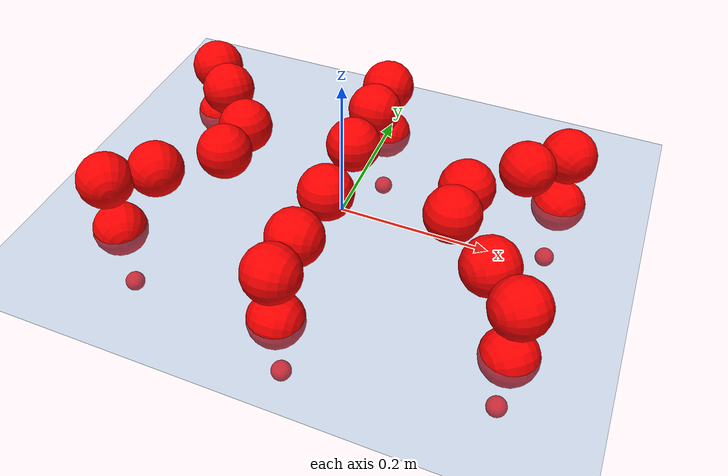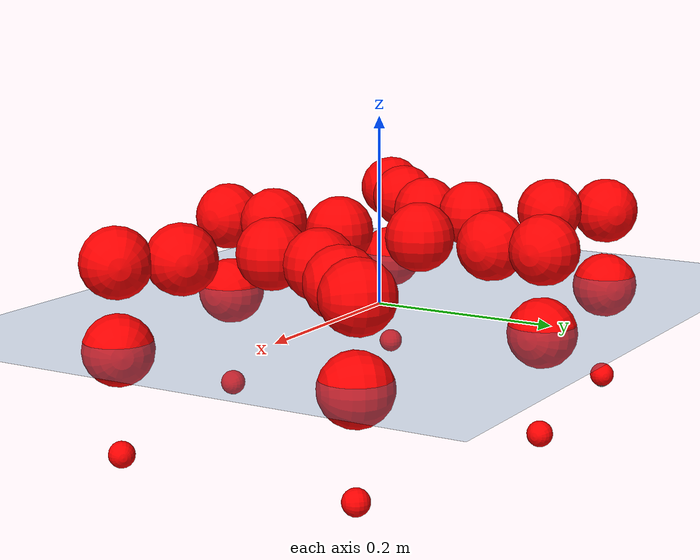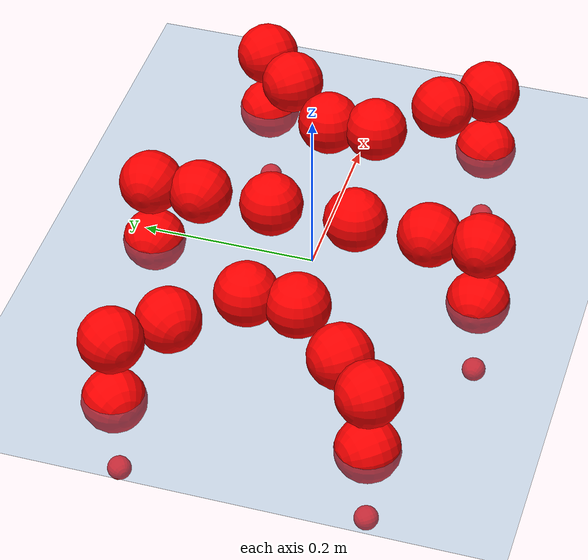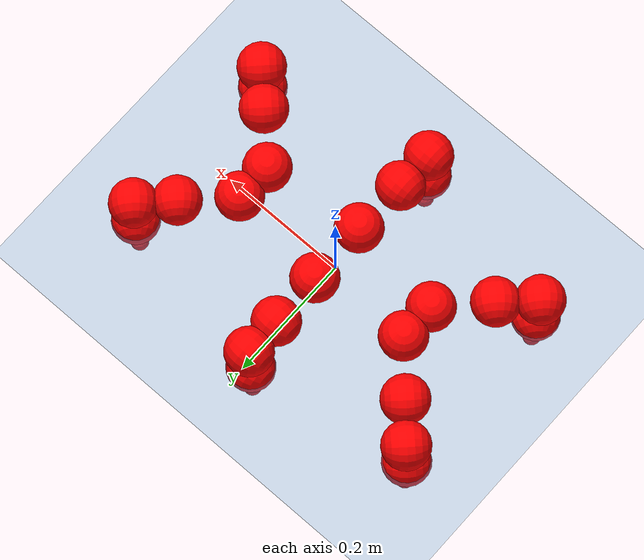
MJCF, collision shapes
<mujoco model="Golem">
  <compiler angle="radian" assetdir="assets" balanceinertia="true" inertiafromgeom="false"/>

  <option timestep="0.005" density="1.2" viscosity="2e-05"/>

  <size nkey="1"/>

  <visual>
    <quality shadowsize="8192"/>
    <map shadowclip="0.5"/>
  </visual>

  <default>
    <default class="/">
      <joint armature="0.01" damping="0.01" frictionloss="0.01"/>
      <geom contype="0" conaffinity="0" group="1" solref="-1000 -80"/>
      <site size="0.01 0.005 0.005" group="5"/>
      <general forcelimited="true" biastype="affine" gainprm="25" biasprm="0 -25 -0.5"/>
      <default class="visual">
        <geom type="mesh" group="2"/>
      </default>
      <default class="collision">
        <geom group="3"/>
      </default>
      <default class="foot">
        <geom size="0.01 0 0" condim="6" group="4" priority="1" solimp="0.015 1 0.01"/>
      </default>
      <default class="reward_collision_sphere">
        <geom group="5" rgba="1 0 0 1"/>
      </default>
    </default>
  </default>

  <asset>
    <texture type="skybox" colorspace="auto" name="//unnamed_texture_0" builtin="gradient" rgb1="0.95 0.95 0.95" rgb2="0.95 0.95 0.95" width="100" height="600"/>
    <texture type="2d" colorspace="auto" name="texplane" builtin="checker" rgb1="0.345 0.575 0.748" rgb2="0.345 0.575 0.748" markrgb="1 1 1" width="512" height="512"/>
    <material name="MatPlane" class="/" texture="texplane" texuniform="true" texrepeat="2 2" specular="0.9"/>
    <mesh name="body" class="/" file="body.stl" scale="0.001 0.001 0.001"/>
    <mesh name="coxa" class="/" file="coxa.stl" scale="0.001 0.001 0.001"/>
    <mesh name="femur" class="/" file="femur.stl" scale="0.001 0.001 0.001"/>
    <mesh name="tibia" class="/" file="tibia.stl" scale="0.001 0.001 0.001"/>
    <mesh name="tarsus" class="/" file="tarsus.stl" scale="0.001 0.001 0.001"/>
  </asset>

  <worldbody>
    <geom name="floor" class="/" size="100 100 0.125" type="plane" group="0" material="MatPlane"/>
    <light name="toplight_shadow" class="/" pos="0 0 5" dir="0.0990148 0.0990148 -0.990148" type="directional" ambient="0.04 0.04 0.04" diffuse="0.55 0.55 0.55" specular="0.12 0.12 0.12"/>
    <light name="toplight_fill" class="/" pos="0 0 5" dir="0.0990148 0.0990148 -0.990148" type="directional" castshadow="false" ambient="0.04 0.04 0.04" diffuse="0.3 0.3 0.3" specular="0.08 0.08 0.08"/>
    <body name="trunk" pos="0.000617541 -0.000780848 0.00105884" quat="1 -0.000104911 -0.000435439 -0.00028299">
      <inertial pos="0.00224955 -0.00149108 -0.000852039" quat="0.999998 -9.72552e-05 0.000296199 0.00185671" mass="2.93293" diaginertia="0.0103154 0.000715445 0.0217034"/>
      <joint name="//unnamed_joint_0" type="free"/>
      <geom name="//unnamed_geom_1" class="/" pos="0 0 0.0739916" quat="1 0 0 0" type="mesh" rgba="0.9 0.9 0.9 1" mesh="body"/>
      <site name="imu" class="/" pos="0.130657 -0.00267894 0.102791" size="0.0091211"/>
      <camera name="track" class="/" pos="0 -1.17361 0" quat="0.707107 0.707107 0 0" mode="trackcom"/>
      <camera name="ego_camera" class="/" pos="0.129143 0 0.115612" quat="-0.5 -0.5 0.5 0.5"/>
      <body name="coxa_RR" pos="-0.175785 -0.0498331 0.0751162" quat="0.382863 -3.43225e-06 -0.000127588 -0.923805">
        <inertial pos="9.00769e-05 -0.000429449 0.000849258" quat="0.999999 -0.000919245 -0.000959662 0.000474199" mass="0.15074" diaginertia="0.00963091 0.00068925 0.0204039"/>
        <joint name="coxa_joint_RR" class="/" pos="0 0 0" axis="0.00941111 0.00232363 -0.999953" range="-3.16192 3.14238" armature="0.00886845" damping="0" frictionloss="0.00907183"/>
        <geom name="//unnamed_geom_2" class="/" type="mesh" rgba="0.2 0.2 0.2 1" mesh="coxa"/>
        <geom name="//unnamed_geom_3" class="reward_collision_sphere" size="0.0364844" pos="-0.0298022 0 0"/>
        <body name="femur_RR" pos="0.0615573 0.00119122 0.0012089" quat="0.499825 -0.500196 0.500006 0.499973">
          <inertial pos="-0.00110537 -0.000412099 -0.000613932" quat="0.999998 -0.000725043 0.000619222 -0.00173145" mass="0.148982" diaginertia="0.009697 0.000677394 0.0201292"/>
          <joint name="femur_joint_RR" class="/" pos="0 0 0" axis="-0.0129082 -0.00357521 -0.99991" range="-3.13799 3.12106" armature="0.00910557" damping="0.000586073" frictionloss="0.0090133"/>
          <geom name="//unnamed_geom_4" class="/" type="mesh" rgba="0.9 0.9 0.9 1" mesh="femur"/>
          <geom name="//unnamed_geom_5" class="reward_collision_sphere" size="0.0364844"/>
          <body name="tibia_RR" pos="-0.00114961 -0.0637563 -0.00164241" quat="5.38967e-05 1 -7.00295e-05 -9.20489e-05">
            <inertial pos="-0.000420821 -0.00245876 0.000304365" quat="0.999913 -0.00524239 0.011779 0.00260978" mass="0.151861" diaginertia="0.00989196 0.000693582 0.0202693"/>
            <joint name="tibia_joint_RR" class="/" pos="0 0 0" axis="-0.00038305 0.00811426 0.999967" range="-3.11454 3.15994" armature="0.00908247" damping="0.00655256" frictionloss="0.00941605"/>
            <geom name="//unnamed_geom_6" class="/" type="mesh" rgba="0.2 0.2 0.2 1" mesh="tibia"/>
            <geom name="//unnamed_geom_7" class="reward_collision_sphere" size="0.0364844"/>
            <body name="tarsus_RR" pos="0.0858835 -0.0026679 -0.00142576" quat="1 -0.000184854 -5.90508e-05 0.000155946">
              <inertial pos="0.0596936 0.000714069 -0.00137005" quat="0.504546 0.497419 0.506748 0.491136" mass="0.156812" diaginertia="0.00986632 0.000706855 0.0202435"/>
              <joint name="tarsus_joint_RR" class="/" pos="0 0 0" axis="-0.00142568 -0.000285586 0.999999" range="-3.16393 3.15233" armature="0.00956966" damping="0.000258328" frictionloss="0.010008"/>
              <geom name="//unnamed_geom_8" class="/" type="mesh" rgba="0.9 0.9 0.9 1" mesh="tarsus"/>
              <geom name="foot_1" class="foot" size="0.00914637" pos="0.111262 0 0" quat="0 -0.707107 0 0.707107"/>
              <geom name="//unnamed_geom_10" class="reward_collision_sphere" size="0.0364844"/>
              <geom name="//unnamed_geom_11" class="reward_collision_sphere" size="0.0136816" pos="0.106791 0 0"/>
              <site name="foot_1" class="foot" pos="0.111262 0 0" quat="0 -0.707107 0 0.707107" size="0.0091211"/>
            </body>
          </body>
        </body>
      </body>
      <body name="coxa_RM" pos="-0.00119793 -0.0793927 0.0737877" quat="0.707596 0.000471613 -0.000785498 -0.706616">
        <inertial pos="0.00173085 0.000232848 -0.00181032" quat="1 -0.000236357 -0.000152111 9.37714e-06" mass="0.153395" diaginertia="0.00969502 0.000712476 0.02049"/>
        <joint name="coxa_joint_RM" class="/" pos="0 0 0" axis="0.00297887 -0.000689165 -0.999995" range="-3.13115 3.14384" armature="0.00989381" damping="0.0188492" frictionloss="0.00879717"/>
        <geom name="//unnamed_geom_12" class="/" type="mesh" rgba="0.2 0.2 0.2 1" mesh="coxa"/>
        <geom name="//unnamed_geom_13" class="reward_collision_sphere" size="0.0364844" pos="-0.0298022 0 0"/>
        <body name="femur_RM" pos="0.0563022 -0.00291378 0.0013566" quat="0.4999 -0.499576 0.500246 0.500278">
          <inertial pos="0.00255632 -0.00113261 -0.000193235" quat="0.999991 0.00188821 0.00342632 -0.00150188" mass="0.146861" diaginertia="0.00908291 0.000673045 0.0193527"/>
          <joint name="femur_joint_RM" class="/" pos="0 0 0" axis="0.00694546 -0.00122097 -0.999975" range="-3.13496 3.08834" armature="0.0086661" damping="0.0167052" frictionloss="0.008934"/>
          <geom name="//unnamed_geom_14" class="/" type="mesh" rgba="0.9 0.9 0.9 1" mesh="femur"/>
          <geom name="//unnamed_geom_15" class="reward_collision_sphere" size="0.0364844"/>
          <body name="tibia_RM" pos="-0.000244855 -0.060845 -0.000878348" quat="0.000174615 1 0.000376182 3.56231e-05">
            <inertial pos="-0.0009383 0.00285136 0.000372175" quat="0.999992 -0.00247432 0.00169982 -0.00251747" mass="0.148875" diaginertia="0.009605 0.000687512 0.0203518"/>
            <joint name="tibia_joint_RM" class="/" pos="0 0 0" axis="-0.00168595 -0.0015797 0.999997" range="-3.12877 3.15944" armature="0.00957081" damping="0.0214457" frictionloss="0.00922034"/>
            <geom name="//unnamed_geom_16" class="/" type="mesh" rgba="0.2 0.2 0.2 1" mesh="tibia"/>
            <geom name="//unnamed_geom_17" class="reward_collision_sphere" size="0.0364844"/>
            <body name="tarsus_RM" pos="0.084651 -0.00156406 0.000304814" quat="1 -3.22558e-05 1.71857e-05 -4.80124e-05">
              <inertial pos="0.0619081 -0.000153698 -0.000759076" quat="0.501691 0.500602 0.499677 0.498024" mass="0.156699" diaginertia="0.00966349 0.000695173 0.0213425"/>
              <joint name="tarsus_joint_RM" class="/" pos="0 0 0" axis="-0.00216487 0.00587856 0.99998" range="-3.17636 3.09574" armature="0.0092578" damping="0.00688151" frictionloss="0.00827803"/>
              <geom name="//unnamed_geom_18" class="/" type="mesh" rgba="0.9 0.9 0.9 1" mesh="tarsus"/>
              <geom name="foot_2" class="foot" size="0.00958906" pos="0.111262 0 0" quat="0 -0.707107 0 0.707107"/>
              <geom name="//unnamed_geom_20" class="reward_collision_sphere" size="0.0364844"/>
              <geom name="//unnamed_geom_21" class="reward_collision_sphere" size="0.0136816" pos="0.106791 0 0"/>
              <site name="foot_2" class="foot" pos="0.111262 0 0" quat="0 -0.707107 0 0.707107" size="0.0091211"/>
            </body>
          </body>
        </body>
      </body>
      <body name="coxa_RF" pos="0.177228 -0.0512193 0.0768232" quat="0.923852 0.000105157 -0.000172142 -0.382749">
        <inertial pos="0.00120843 -0.0025996 0.0020424" quat="0.99992 0.0074825 0.000374912 0.0101739" mass="0.145112" diaginertia="0.00956672 0.00068188 0.0202911"/>
        <joint name="coxa_joint_RF" class="/" pos="0 0 0" axis="7.4376e-05 -0.00690444 -0.999976" range="-3.08687 3.1433" armature="0.00813528" damping="0" frictionloss="0.00894646"/>
        <geom name="//unnamed_geom_22" class="/" type="mesh" rgba="0.2 0.2 0.2 1" mesh="coxa"/>
        <geom name="//unnamed_geom_23" class="reward_collision_sphere" size="0.0364844" pos="-0.0298022 0 0"/>
        <body name="femur_RF" pos="0.0599727 -0.00031908 -0.000997314" quat="0.500042 -0.499938 0.50006 0.49996">
          <inertial pos="-0.00157252 0.0024037 0.000545684" quat="0.999987 0.00237079 0.00407104 -0.00197655" mass="0.151855" diaginertia="0.0100006 0.000717865 0.0215893"/>
          <joint name="femur_joint_RF" class="/" pos="0 0 0" axis="-0.000182367 -0.000268998 -1" range="-3.14591 3.13706" armature="0.00917276" damping="0.00689253" frictionloss="0.00910721"/>
          <geom name="//unnamed_geom_24" class="/" type="mesh" rgba="0.9 0.9 0.9 1" mesh="femur"/>
          <geom name="//unnamed_geom_25" class="reward_collision_sphere" size="0.0364844"/>
          <body name="tibia_RF" pos="0.000387822 -0.064029 -0.000495616" quat="4.01491e-05 1 -3.21481e-05 0.00020813">
            <inertial pos="5.75789e-05 -0.00027338 -0.00268214" quat="0.999933 0.00127403 0.00601777 -0.00983511" mass="0.154007" diaginertia="0.00992461 0.000682454 0.0214275"/>
            <joint name="tibia_joint_RF" class="/" pos="0 0 0" axis="-0.00405954 -0.00328821 0.999986" range="-3.14765 3.14652" armature="0.00913889" damping="0.00979778" frictionloss="0.00937357"/>
            <geom name="//unnamed_geom_26" class="/" type="mesh" rgba="0.2 0.2 0.2 1" mesh="tibia"/>
            <geom name="//unnamed_geom_27" class="reward_collision_sphere" size="0.0364844"/>
            <body name="tarsus_RF" pos="0.0873206 0.000188626 -0.000122317" quat="1 -3.98481e-05 0.000867865 -0.000200259">
              <inertial pos="0.0597366 -0.000760309 -0.000996917" quat="0.499337 0.498894 0.501836 0.499928" mass="0.153965" diaginertia="0.00989575 0.000681268 0.0201769"/>
              <joint name="tarsus_joint_RF" class="/" pos="0 0 0" axis="-0.00316736 0.000786769 0.999995" stiffness="0.0237376" range="-3.10186 3.14153" armature="0.00856175" damping="0" frictionloss="0.00874921"/>
              <geom name="//unnamed_geom_28" class="/" type="mesh" rgba="0.9 0.9 0.9 1" mesh="tarsus"/>
              <geom name="foot_3" class="foot" size="0.009417" pos="0.111262 0 0" quat="0 -0.707107 0 0.707107"/>
              <geom name="//unnamed_geom_30" class="reward_collision_sphere" size="0.0364844"/>
              <geom name="//unnamed_geom_31" class="reward_collision_sphere" size="0.0136816" pos="0.106791 0 0"/>
              <site name="foot_3" class="foot" pos="0.111262 0 0" quat="0 -0.707107 0 0.707107" size="0.0091211"/>
            </body>
          </body>
        </body>
      </body>
      <body name="coxa_LR" pos="-0.17467 0.0503998 0.0755305" quat="0.382401 -0.000146253 -2.93781e-06 0.923997">
        <inertial pos="-0.00135638 -0.0023135 -0.00066544" quat="0.99996 -0.00793355 -0.00274551 0.00314254" mass="0.147386" diaginertia="0.00979186 0.000667913 0.0195699"/>
        <joint name="coxa_joint_LR" class="/" pos="0 0 0" axis="-0.00157877 -0.000970094 -0.999998" range="-3.14995 3.13653" armature="0.00891948" damping="0.0193201" frictionloss="0.00936298"/>
        <geom name="//unnamed_geom_32" class="/" type="mesh" rgba="0.2 0.2 0.2 1" mesh="coxa"/>
        <geom name="//unnamed_geom_33" class="reward_collision_sphere" size="0.0364844" pos="-0.0298022 0 0"/>
        <body name="femur_LR" pos="0.0620582 -0.00368072 0.000121034" quat="0.499494 -0.500165 0.499953 0.500387">
          <inertial pos="-0.000181628 -0.00272503 -0.000686436" quat="1 5.22372e-05 4.67132e-05 0.000129988" mass="0.151193" diaginertia="0.00934452 0.000706799 0.0199431"/>
          <joint name="femur_joint_LR" class="/" pos="0 0 0" axis="0.000117002 -0.00017962 1" range="-3.0915 3.13927" armature="0.00916167" damping="0" frictionloss="0.00909495"/>
          <geom name="//unnamed_geom_34" class="/" type="mesh" rgba="0.9 0.9 0.9 1" mesh="femur"/>
          <geom name="//unnamed_geom_35" class="reward_collision_sphere" size="0.0364844"/>
          <body name="tibia_LR" pos="0.0019668 -0.0662643 -0.00348419" quat="-0.000170359 1 4.85945e-05 -0.00019414">
            <inertial pos="0.000441274 -0.00193606 0.000175096" quat="0.999932 -0.00679269 0.00613502 -0.0071615" mass="0.14921" diaginertia="0.0093079 0.000680302 0.0204017"/>
            <joint name="tibia_joint_LR" class="/" pos="0 0 0" axis="0.000709789 0.000985674 -0.999999" range="-3.13035 3.18897" armature="0.00866374" damping="0" frictionloss="0.00911218"/>
            <geom name="//unnamed_geom_36" class="/" type="mesh" rgba="0.2 0.2 0.2 1" mesh="tibia"/>
            <geom name="//unnamed_geom_37" class="reward_collision_sphere" size="0.0364844"/>
            <body name="tarsus_LR" pos="0.0870988 0.00216761 -0.00206894" quat="1 -0.000436554 6.72228e-05 0.000603807">
              <inertial pos="0.0624347 -0.0022882 -0.00225207" quat="0.498169 0.501388 0.499901 0.500537" mass="0.152159" diaginertia="0.00958628 0.000690548 0.0199544"/>
              <joint name="tarsus_joint_LR" class="/" pos="0 0 0" axis="0.00878802 -0.012302 -0.999886" range="-3.13222 3.12286" armature="0.00841573" damping="0" frictionloss="0.00876781"/>
              <geom name="//unnamed_geom_38" class="/" type="mesh" rgba="0.9 0.9 0.9 1" mesh="tarsus"/>
              <geom name="foot_4" class="foot" size="0.0100718" pos="0.111262 0 0" quat="0.707107 0 -0.707107 0"/>
              <geom name="//unnamed_geom_40" class="reward_collision_sphere" size="0.0364844"/>
              <geom name="//unnamed_geom_41" class="reward_collision_sphere" size="0.0136816" pos="0.106791 0 0"/>
              <site name="foot_4" class="foot" pos="0.111262 0 0" quat="0.707107 0 -0.707107 0" size="0.0091211"/>
            </body>
          </body>
        </body>
      </body>
      <body name="coxa_LM" pos="-0.00340275 0.0775485 0.0753747" quat="0.707085 0.000187 0.000541134 0.707129">
        <inertial pos="0.00123623 -0.0016024 -0.00036587" quat="0.999931 -0.00917959 -0.00120107 0.00724994" mass="0.152759" diaginertia="0.00987465 0.00071861 0.0213331"/>
        <joint name="coxa_joint_LM" class="/" pos="0 0 0" axis="0.0103075 -0.00830534 -0.999912" range="-3.12881 3.11758" armature="0.00868231" damping="0.00778718" frictionloss="0.0095194"/>
        <geom name="//unnamed_geom_42" class="/" type="mesh" rgba="0.2 0.2 0.2 1" mesh="coxa"/>
        <geom name="//unnamed_geom_43" class="reward_collision_sphere" size="0.0364844" pos="-0.0298022 0 0"/>
        <body name="femur_LM" pos="0.0537821 0.00134616 -0.00104598" quat="0.499977 -0.499939 0.500218 0.499866">
          <inertial pos="0.00138697 0.000455655 0.00105806" quat="0.999961 -0.00301505 -0.0076481 0.00337386" mass="0.154585" diaginertia="0.00958825 0.000735009 0.0213839"/>
          <joint name="femur_joint_LM" class="/" pos="0 0 0" axis="-0.00285328 0.000459827 0.999996" range="-3.16024 3.1446" armature="0.00951767" damping="0.00375317" frictionloss="0.00848705"/>
          <geom name="//unnamed_geom_44" class="/" type="mesh" rgba="0.9 0.9 0.9 1" mesh="femur"/>
          <geom name="//unnamed_geom_45" class="reward_collision_sphere" size="0.0364844"/>
          <body name="tibia_LM" pos="-0.00119774 -0.0586235 0.00108285" quat="0.000169309 1 0.000547087 -0.000786752">
            <inertial pos="0.00085454 0.000137203 -0.00229126" quat="0.999925 -0.00805554 -0.00754046 -0.00532982" mass="0.151796" diaginertia="0.00967375 0.000723676 0.0210697"/>
            <joint name="tibia_joint_LM" class="/" pos="0 0 0" axis="0.00397333 -0.00187185 -0.99999" range="-3.13436 3.13785" armature="0.00927483" damping="0" frictionloss="0.00819405"/>
            <geom name="//unnamed_geom_46" class="/" type="mesh" rgba="0.2 0.2 0.2 1" mesh="tibia"/>
            <geom name="//unnamed_geom_47" class="reward_collision_sphere" size="0.0364844"/>
            <body name="tarsus_LM" pos="0.0859802 -0.000378853 -0.000180671" quat="1 -0.000500794 6.9477e-05 -0.000852906">
              <inertial pos="0.060566 -0.00128862 0.000470369" quat="0.499238 0.503648 0.490274 0.506686" mass="0.156125" diaginertia="0.00998646 0.000700652 0.0206269"/>
              <joint name="tarsus_joint_LM" class="/" pos="0 0 0" axis="0.00412355 0.0104111 -0.999937" stiffness="0.00351273" range="-3.1358 3.13174" armature="0.00895941" damping="0" frictionloss="0.0102319"/>
              <geom name="//unnamed_geom_48" class="/" type="mesh" rgba="0.9 0.9 0.9 1" mesh="tarsus"/>
              <geom name="foot_5" class="foot" size="0.00906114" pos="0.111262 0 0" quat="0.707107 0 -0.707107 0"/>
              <geom name="//unnamed_geom_50" class="reward_collision_sphere" size="0.0364844"/>
              <geom name="//unnamed_geom_51" class="reward_collision_sphere" size="0.0136816" pos="0.106791 0 0"/>
              <site name="foot_5" class="foot" pos="0.111262 0 0" quat="0.707107 0 -0.707107 0" size="0.0091211"/>
            </body>
          </body>
        </body>
      </body>
      <body name="coxa_LF" pos="0.179099 0.0479956 0.0722807" quat="0.923775 -0.000262273 8.47871e-05 0.382935">
        <inertial pos="-0.000558225 0.000415273 0.00240056" quat="0.999963 -0.0070591 0.00485368 7.83086e-05" mass="0.148826" diaginertia="0.00931083 0.000712584 0.0202075"/>
        <joint name="coxa_joint_LF" class="/" pos="0 0 0" axis="-0.0115291 0.00916406 -0.999892" range="-3.12612 3.13765" armature="0.00814903" damping="0" frictionloss="0.010318"/>
        <geom name="//unnamed_geom_52" class="/" type="mesh" rgba="0.2 0.2 0.2 1" mesh="coxa"/>
        <geom name="//unnamed_geom_53" class="reward_collision_sphere" size="0.0364844" pos="-0.0298022 0 0"/>
        <body name="femur_LF" pos="0.0591286 0.00055765 0.000347447" quat="0.499926 -0.500088 0.500105 0.49988">
          <inertial pos="-0.00270046 -6.5683e-05 0.00259327" quat="0.999998 -0.0014206 0.00115828 0.000177222" mass="0.152871" diaginertia="0.0100466 0.000699115 0.0207117"/>
          <joint name="femur_joint_LF" class="/" pos="0 0 0" axis="-0.00201187 -0.00285965 0.999994" range="-3.12844 3.12853" armature="0.00955279" damping="0" frictionloss="0.0086429"/>
          <geom name="//unnamed_geom_54" class="/" type="mesh" rgba="0.9 0.9 0.9 1" mesh="femur"/>
          <geom name="//unnamed_geom_55" class="reward_collision_sphere" size="0.0364844"/>
          <body name="tibia_LF" pos="-0.000486203 -0.0626895 0.000299971" quat="0.000104762 1 -0.000179005 -0.000284751">
            <inertial pos="0.000335026 -0.00239632 0.000270813" quat="1 -0.00017211 -0.000285942 0.000472479" mass="0.145769" diaginertia="0.00905088 0.000674671 0.0197625"/>
            <joint name="tibia_joint_LF" class="/" pos="0 0 0" axis="-0.00459985 0.0002227 -0.999989" range="-3.1414 3.13529" armature="0.00983287" damping="0" frictionloss="0.00926975"/>
            <geom name="//unnamed_geom_56" class="/" type="mesh" rgba="0.2 0.2 0.2 1" mesh="tibia"/>
            <geom name="//unnamed_geom_57" class="reward_collision_sphere" size="0.0364844"/>
            <body name="tarsus_LF" pos="0.0854502 0.000781483 0.00197327" quat="1 0.000154455 -0.000158996 0.00019793">
              <inertial pos="0.0593665 0.00119232 0.000535627" quat="0.497868 0.503579 0.496927 0.501598" mass="0.143375" diaginertia="0.00928346 0.0006558 0.0198956"/>
              <joint name="tarsus_joint_LF" class="/" pos="0 0 0" axis="0.00136135 -9.2283e-05 -0.999999" stiffness="0.000824769" range="-3.15728 3.13394" armature="0.0100916" damping="0.011912" frictionloss="0.00791702"/>
              <geom name="//unnamed_geom_58" class="/" type="mesh" rgba="0.9 0.9 0.9 1" mesh="tarsus"/>
              <geom name="foot_6" class="foot" size="0.00881502" pos="0.111262 0 0" quat="0.707107 0 -0.707107 0"/>
              <geom name="//unnamed_geom_60" class="reward_collision_sphere" size="0.0364844"/>
              <geom name="//unnamed_geom_61" class="reward_collision_sphere" size="0.0136816" pos="0.106791 0 0"/>
              <site name="foot_6" class="foot" pos="0.111262 0 0" quat="0.707107 0 -0.707107 0" size="0.0091211"/>
            </body>
          </body>
        </body>
      </body>
    </body>
  </worldbody>

  <contact>
    <pair class="/" geom1="floor" geom2="foot_1" name="//unnamed_contact_0"/>
    <pair class="/" geom1="floor" geom2="foot_2" name="//unnamed_contact_1"/>
    <pair class="/" geom1="floor" geom2="foot_3" name="//unnamed_contact_2"/>
    <pair class="/" geom1="floor" geom2="foot_4" name="//unnamed_contact_3"/>
    <pair class="/" geom1="floor" geom2="foot_5" name="//unnamed_contact_4"/>
    <pair class="/" geom1="floor" geom2="foot_6" name="//unnamed_contact_5"/>
  </contact>

  <actuator>
    <general name="coxa_joint_RR" class="/" joint="coxa_joint_RR" forcerange="-6.85364 6.85364" gainprm="22.9759" biasprm="0 -22.9759 -0.4871"/>
    <general name="femur_joint_RR" class="/" joint="femur_joint_RR" forcerange="-6.62233 6.62233" gainprm="22.9759" biasprm="0 -22.9759 -0.4871"/>
    <general name="tibia_joint_RR" class="/" joint="tibia_joint_RR" forcerange="-6.91529 6.91529" gainprm="22.9759" biasprm="0 -22.9759 -0.4871"/>
    <general name="tarsus_joint_RR" class="/" joint="tarsus_joint_RR" forcerange="-7.25195 7.25195" gainprm="22.9759" biasprm="0 -22.9759 -0.4871"/>
    <general name="coxa_joint_RM" class="/" joint="coxa_joint_RM" forcerange="-6.67368 6.67368" gainprm="22.9759" biasprm="0 -22.9759 -0.4871"/>
    <general name="femur_joint_RM" class="/" joint="femur_joint_RM" forcerange="-6.65327 6.65327" gainprm="22.9759" biasprm="0 -22.9759 -0.4871"/>
    <general name="tibia_joint_RM" class="/" joint="tibia_joint_RM" forcerange="-6.577 6.577" gainprm="22.9759" biasprm="0 -22.9759 -0.4871"/>
    <general name="tarsus_joint_RM" class="/" joint="tarsus_joint_RM" forcerange="-7.31439 7.31439" gainprm="22.9759" biasprm="0 -22.9759 -0.4871"/>
    <general name="coxa_joint_RF" class="/" joint="coxa_joint_RF" forcerange="-6.75912 6.75912" gainprm="22.9759" biasprm="0 -22.9759 -0.4871"/>
    <general name="femur_joint_RF" class="/" joint="femur_joint_RF" forcerange="-6.01751 6.01751" gainprm="22.9759" biasprm="0 -22.9759 -0.4871"/>
    <general name="tibia_joint_RF" class="/" joint="tibia_joint_RF" forcerange="-6.93578 6.93578" gainprm="22.9759" biasprm="0 -22.9759 -0.4871"/>
    <general name="tarsus_joint_RF" class="/" joint="tarsus_joint_RF" forcerange="-6.30914 6.30914" gainprm="22.9759" biasprm="0 -22.9759 -0.4871"/>
    <general name="coxa_joint_LR" class="/" joint="coxa_joint_LR" forcerange="-6.46813 6.46813" gainprm="22.9759" biasprm="0 -22.9759 -0.4871"/>
    <general name="femur_joint_LR" class="/" joint="femur_joint_LR" forcerange="-6.78752 6.78752" gainprm="22.9759" biasprm="0 -22.9759 -0.4871"/>
    <general name="tibia_joint_LR" class="/" joint="tibia_joint_LR" forcerange="-6.62071 6.62071" gainprm="22.9759" biasprm="0 -22.9759 -0.4871"/>
    <general name="tarsus_joint_LR" class="/" joint="tarsus_joint_LR" forcerange="-6.45931 6.45931" gainprm="22.9759" biasprm="0 -22.9759 -0.4871"/>
    <general name="coxa_joint_LM" class="/" joint="coxa_joint_LM" forcerange="-6.84701 6.84701" gainprm="22.9759" biasprm="0 -22.9759 -0.4871"/>
    <general name="femur_joint_LM" class="/" joint="femur_joint_LM" forcerange="-6.38636 6.38636" gainprm="22.9759" biasprm="0 -22.9759 -0.4871"/>
    <general name="tibia_joint_LM" class="/" joint="tibia_joint_LM" forcerange="-6.8163 6.8163" gainprm="22.9759" biasprm="0 -22.9759 -0.4871"/>
    <general name="tarsus_joint_LM" class="/" joint="tarsus_joint_LM" forcerange="-6.89097 6.89097" gainprm="22.9759" biasprm="0 -22.9759 -0.4871"/>
    <general name="coxa_joint_LF" class="/" joint="coxa_joint_LF" forcerange="-6.07722 6.07722" gainprm="22.9759" biasprm="0 -22.9759 -0.4871"/>
    <general name="femur_joint_LF" class="/" joint="femur_joint_LF" forcerange="-6.4626 6.4626" gainprm="22.9759" biasprm="0 -22.9759 -0.4871"/>
    <general name="tibia_joint_LF" class="/" joint="tibia_joint_LF" forcerange="-6.84427 6.84427" gainprm="22.9759" biasprm="0 -22.9759 -0.4871"/>
    <general name="tarsus_joint_LF" class="/" joint="tarsus_joint_LF" forcerange="-6.85302 6.85302" gainprm="22.9759" biasprm="0 -22.9759 -0.4871"/>
  </actuator>

  <sensor>
    <gyro site="imu" name="imu_angular_velocity"/>
    <velocimeter site="imu" name="imu_linear_velocity"/>
    <framelinvel objtype="site" objname="foot_1" name="foot_1_global_linear_velocity"/>
    <framelinvel objtype="site" objname="foot_2" name="foot_2_global_linear_velocity"/>
    <framelinvel objtype="site" objname="foot_3" name="foot_3_global_linear_velocity"/>
    <framelinvel objtype="site" objname="foot_4" name="foot_4_global_linear_velocity"/>
    <framelinvel objtype="site" objname="foot_5" name="foot_5_global_linear_velocity"/>
    <framelinvel objtype="site" objname="foot_6" name="foot_6_global_linear_velocity"/>
  </sensor>

  <keyframe>
    <key name="home" qpos="0 0 0.1457 1 0 0 0 0 0 0 0 0 0 0 0 0 0 0 0 0 0 0 0 0 0 0 0 0 0 0 0"/>
  </keyframe>
</mujoco>
